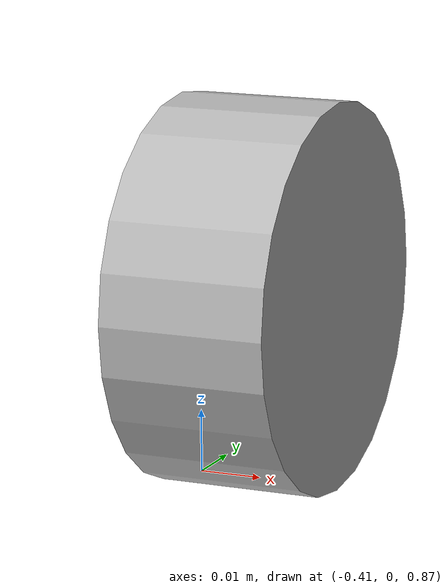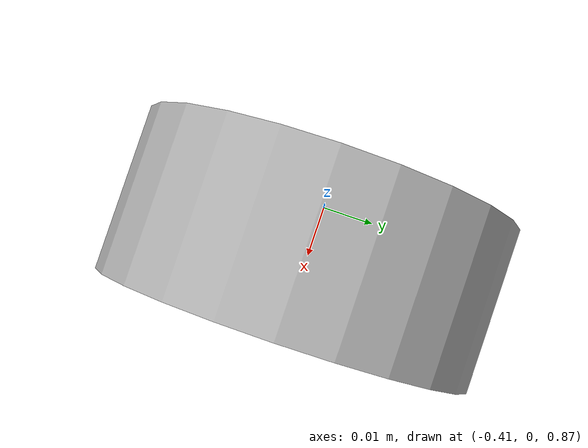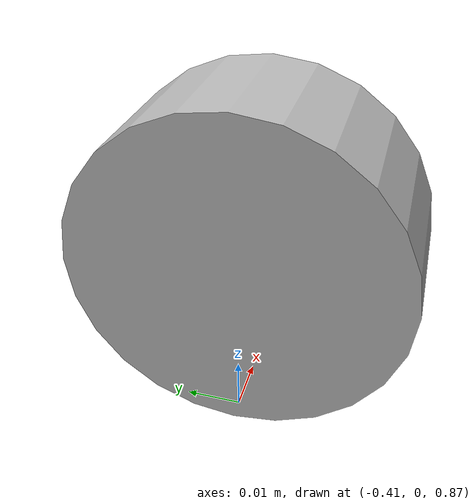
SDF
<?xml version="1.0"?>
<sdf version="1.6">
  <model name="realsense_camera">
    <pose frame="">-0.4 0 0.9 -1.5707 0 1.5707</pose>
    <link name="link">
      <inertial>
	      <pose frame=''>0 0 0 0 0 0</pose>
        <mass>0.2</mass>
        <inertia>
          <ixx>0.000028889</ixx>
          <iyy>0.000028889</iyy>
          <izz>0.000028889</izz>
        </inertia>
      </inertial>
      <self_collide>0</self_collide>
      <enable_wind>0</enable_wind>
      <kinematic>0</kinematic>
      <gravity>0</gravity>
      <visual name="visual">
        <geometry>
          <cylinder>
            <radius>0.0305</radius>
            <length>0.026</length>
          </cylinder>
        </geometry>
      </visual>
      <collision name='collision'>
        <pose frame=''>0 0 0 0 -0 0</pose>
        <geometry>
          <cylinder>
            <radius>0.0305</radius>
            <length>0.026</length>
          </cylinder>
        </geometry>
      </collision>
      <sensor name ="depth" type ="depth">
        <pose>0 0 0.0305 1.5707 1.5707 0</pose>
        <update_rate>30.0</update_rate>
        <visualize>0</visualize>
        <camera>
          <horizontal_fov>1.22173</horizontal_fov>
          <image>
            <width>1024</width>
            <height>768</height>
          </image>
          <clip>
            <near>0.05</near>
            <far>3.0</far>
          </clip>
          <noise>
            <type>gaussian</type>
            <mean>0.0</mean>
            <stddev>0.007</stddev>
          </noise>
        </camera>
        <plugin name="depth_plugin" filename="libgazebo_ros_openni_kinect.so">
          <baseline>0.2</baseline>
          <alwaysOn>true</alwaysOn>
          <updateRate>30.0</updateRate>
          <cameraName>depth_ir</cameraName>
          <imageTopicName>/depth/color/image_raw</imageTopicName>
          <cameraInfoTopicName>/depth/color/camera_info</cameraInfoTopicName>
          <depthImageTopicName>/depth/depth/image_raw</depthImageTopicName>
          <depthImageCameraInfoTopicName>/depth/depth/camera_info</depthImageCameraInfoTopicName>
          <pointCloudTopicName>/depth/depth/points</pointCloudTopicName>
          <frameName>depth_link</frameName>
          <pointCloudCutoff>0.05</pointCloudCutoff>
          <pointCloudCutoffMax>3.0</pointCloudCutoffMax>
	        <distortionK1>0</distortionK1>
          <distortionK2>0</distortionK2>
          <distortionK3>0</distortionK3>
          <distortionT1>0</distortionT1>
          <distortionT2>0</distortionT2>
          <CxPrime>0</CxPrime>
          <Cx>0</Cx>
          <Cy>0</Cy>
          <focalLength>0</focalLength>
          <hackBaseline>0</hackBaseline>
        </plugin>
      </sensor>
    </link>
  </model>
</sdf>
